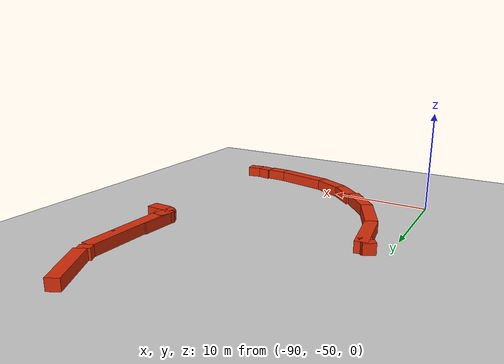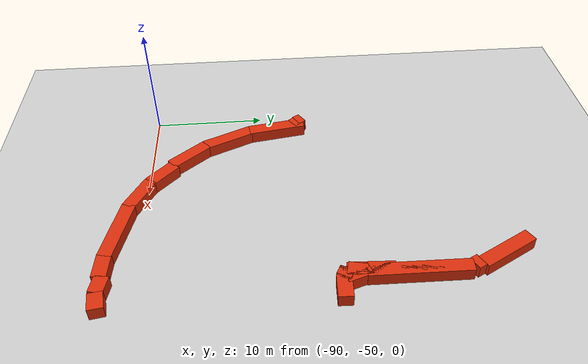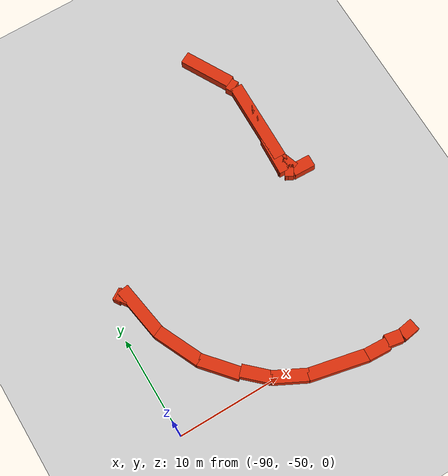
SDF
<sdf version="1.6">
 <world name="default">
  <include><uri>model://ground_plane</uri></include>
  <model name="track_inner_guardrail">
   <static>true</static>
   <link name="seg_000">
    <pose>-68.76 -33.00 0.55 0 0 -1.2416</pose>
    <collision name="col"><geometry><box><size>2.11 1.20 1.1</size></box></geometry></collision>
    <visual name="vis">
     <geometry><box><size>2.11 1.20 1.1</size></box></geometry>
     <material>
      <ambient>0.35 0.08 0.02 1</ambient>
      <diffuse>0.85 0.18 0.04 1</diffuse>
      <specular>0.2 0.2 0.2 1</specular>
     </material>
    </visual>
   </link>
   <link name="seg_248">
    <pose>-70.20 -20.92 0.55 0 0 -1.0765</pose>
    <collision name="col"><geometry><box><size>5.16 1.20 1.1</size></box></geometry></collision>
    <visual name="vis">
     <geometry><box><size>5.16 1.20 1.1</size></box></geometry>
     <material>
      <ambient>0.35 0.08 0.02 1</ambient>
      <diffuse>0.85 0.18 0.04 1</diffuse>
      <specular>0.2 0.2 0.2 1</specular>
     </material>
    </visual>
   </link>
   <link name="seg_249">
    <pose>-69.02 -23.61 0.55 0 0 -1.0765</pose>
    <collision name="col"><geometry><box><size>0.75 1.20 1.1</size></box></geometry></collision>
    <visual name="vis">
     <geometry><box><size>0.75 1.20 1.1</size></box></geometry>
     <material>
      <ambient>0.35 0.08 0.02 1</ambient>
      <diffuse>0.85 0.18 0.04 1</diffuse>
      <specular>0.2 0.2 0.2 1</specular>
     </material>
    </visual>
   </link>
   <link name="seg_250">
    <pose>-68.85 -28.13 0.55 0 0 -1.5891</pose>
    <collision name="col"><geometry><box><size>8.32 1.20 1.1</size></box></geometry></collision>
    <visual name="vis">
     <geometry><box><size>8.32 1.20 1.1</size></box></geometry>
     <material>
      <ambient>0.35 0.08 0.02 1</ambient>
      <diffuse>0.85 0.18 0.04 1</diffuse>
      <specular>0.2 0.2 0.2 1</specular>
     </material>
    </visual>
   </link>
   <link name="seg_251">
    <pose>-69.11 -32.99 0.55 0 0 -1.8026</pose>
    <collision name="col"><geometry><box><size>1.56 1.20 1.1</size></box></geometry></collision>
    <visual name="vis">
     <geometry><box><size>1.56 1.20 1.1</size></box></geometry>
     <material>
      <ambient>0.35 0.08 0.02 1</ambient>
      <diffuse>0.85 0.18 0.04 1</diffuse>
      <specular>0.2 0.2 0.2 1</specular>
     </material>
    </visual>
   </link>
   <link name="seg_252">
    <pose>-68.81 -33.95 0.55 0 0 -0.3958</pose>
    <collision name="col"><geometry><box><size>1.05 1.20 1.1</size></box></geometry></collision>
    <visual name="vis">
     <geometry><box><size>1.05 1.20 1.1</size></box></geometry>
     <material>
      <ambient>0.35 0.08 0.02 1</ambient>
      <diffuse>0.85 0.18 0.04 1</diffuse>
      <specular>0.2 0.2 0.2 1</specular>
     </material>
    </visual>
   </link>
   <link name="seg_260">
    <pose>-67.60 -34.14 0.55 0 0 3.1081</pose>
    <collision name="col"><geometry><box><size>2.11 1.20 1.1</size></box></geometry></collision>
    <visual name="vis">
     <geometry><box><size>2.11 1.20 1.1</size></box></geometry>
     <material>
      <ambient>0.35 0.08 0.02 1</ambient>
      <diffuse>0.85 0.18 0.04 1</diffuse>
      <specular>0.2 0.2 0.2 1</specular>
     </material>
    </visual>
   </link>
   <link name="seg_261">
    <pose>-68.90 -33.93 0.55 0 0 2.6156</pose>
    <collision name="col"><geometry><box><size>0.83 1.20 1.1</size></box></geometry></collision>
    <visual name="vis">
     <geometry><box><size>0.83 1.20 1.1</size></box></geometry>
     <material>
      <ambient>0.35 0.08 0.02 1</ambient>
      <diffuse>0.85 0.18 0.04 1</diffuse>
      <specular>0.2 0.2 0.2 1</specular>
     </material>
    </visual>
   </link>
   <link name="seg_262">
    <pose>-69.12 -31.89 0.55 0 0 1.5207</pose>
    <collision name="col"><geometry><box><size>3.83 1.20 1.1</size></box></geometry></collision>
    <visual name="vis">
     <geometry><box><size>3.83 1.20 1.1</size></box></geometry>
     <material>
      <ambient>0.35 0.08 0.02 1</ambient>
      <diffuse>0.85 0.18 0.04 1</diffuse>
      <specular>0.2 0.2 0.2 1</specular>
     </material>
    </visual>
   </link>
   <link name="seg_263">
    <pose>-68.85 -29.03 0.55 0 0 2.8393</pose>
    <collision name="col"><geometry><box><size>0.22 1.20 1.1</size></box></geometry></collision>
    <visual name="vis">
     <geometry><box><size>0.22 1.20 1.1</size></box></geometry>
     <material>
      <ambient>0.35 0.08 0.02 1</ambient>
      <diffuse>0.85 0.18 0.04 1</diffuse>
      <specular>0.2 0.2 0.2 1</specular>
     </material>
    </visual>
   </link>
   <link name="seg_264">
    <pose>-68.78 -28.27 0.55 0 0 2.8393</pose>
    <collision name="col"><geometry><box><size>0.22 1.20 1.1</size></box></geometry></collision>
    <visual name="vis">
     <geometry><box><size>0.22 1.20 1.1</size></box></geometry>
     <material>
      <ambient>0.35 0.08 0.02 1</ambient>
      <diffuse>0.85 0.18 0.04 1</diffuse>
      <specular>0.2 0.2 0.2 1</specular>
     </material>
    </visual>
   </link>
   <link name="seg_265">
    <pose>-68.72 -27.51 0.55 0 0 2.8393</pose>
    <collision name="col"><geometry><box><size>0.34 1.20 1.1</size></box></geometry></collision>
    <visual name="vis">
     <geometry><box><size>0.34 1.20 1.1</size></box></geometry>
     <material>
      <ambient>0.35 0.08 0.02 1</ambient>
      <diffuse>0.85 0.18 0.04 1</diffuse>
      <specular>0.2 0.2 0.2 1</specular>
     </material>
    </visual>
   </link>
   <link name="seg_266">
    <pose>-68.75 -26.97 0.55 0 0 2.8393</pose>
    <collision name="col"><geometry><box><size>0.22 1.20 1.1</size></box></geometry></collision>
    <visual name="vis">
     <geometry><box><size>0.22 1.20 1.1</size></box></geometry>
     <material>
      <ambient>0.35 0.08 0.02 1</ambient>
      <diffuse>0.85 0.18 0.04 1</diffuse>
      <specular>0.2 0.2 0.2 1</specular>
     </material>
    </visual>
   </link>
  </model>
  <model name="track_outer_guardrail">
   <static>true</static>
   <link name="seg_000">
    <pose>-69.30 -52.51 0.55 0 0 -0.1775</pose>
    <collision name="col"><geometry><box><size>1.54 1.20 1.1</size></box></geometry></collision>
    <visual name="vis">
     <geometry><box><size>1.54 1.20 1.1</size></box></geometry>
     <material>
      <ambient>0.35 0.08 0.02 1</ambient>
      <diffuse>0.85 0.18 0.04 1</diffuse>
      <specular>0.2 0.2 0.2 1</specular>
     </material>
    </visual>
   </link>
   <link name="seg_001">
    <pose>-67.77 -52.51 0.55 0 0 0.1643</pose>
    <collision name="col"><geometry><box><size>1.57 1.20 1.1</size></box></geometry></collision>
    <visual name="vis">
     <geometry><box><size>1.57 1.20 1.1</size></box></geometry>
     <material>
      <ambient>0.35 0.08 0.02 1</ambient>
      <diffuse>0.85 0.18 0.04 1</diffuse>
      <specular>0.2 0.2 0.2 1</specular>
     </material>
    </visual>
   </link>
   <link name="seg_146">
    <pose>-88.17 -36.49 0.55 0 0 -0.9488</pose>
    <collision name="col"><geometry><box><size>1.12 1.20 1.1</size></box></geometry></collision>
    <visual name="vis">
     <geometry><box><size>1.12 1.20 1.1</size></box></geometry>
     <material>
      <ambient>0.35 0.08 0.02 1</ambient>
      <diffuse>0.85 0.18 0.04 1</diffuse>
      <specular>0.2 0.2 0.2 1</specular>
     </material>
    </visual>
   </link>
   <link name="seg_147">
    <pose>-88.47 -36.24 0.55 0 0 2.1287</pose>
    <collision name="col"><geometry><box><size>0.73 1.20 1.1</size></box></geometry></collision>
    <visual name="vis">
     <geometry><box><size>0.73 1.20 1.1</size></box></geometry>
     <material>
      <ambient>0.35 0.08 0.02 1</ambient>
      <diffuse>0.85 0.18 0.04 1</diffuse>
      <specular>0.2 0.2 0.2 1</specular>
     </material>
    </visual>
   </link>
   <link name="seg_149">
    <pose>-87.51 -38.47 0.55 0 0 -1.4131</pose>
    <collision name="col"><geometry><box><size>5.25 1.20 1.1</size></box></geometry></collision>
    <visual name="vis">
     <geometry><box><size>5.25 1.20 1.1</size></box></geometry>
     <material>
      <ambient>0.35 0.08 0.02 1</ambient>
      <diffuse>0.85 0.18 0.04 1</diffuse>
      <specular>0.2 0.2 0.2 1</specular>
     </material>
    </visual>
   </link>
   <link name="seg_150">
    <pose>-86.16 -43.07 0.55 0 0 -1.1428</pose>
    <collision name="col"><geometry><box><size>4.66 1.20 1.1</size></box></geometry></collision>
    <visual name="vis">
     <geometry><box><size>4.66 1.20 1.1</size></box></geometry>
     <material>
      <ambient>0.35 0.08 0.02 1</ambient>
      <diffuse>0.85 0.18 0.04 1</diffuse>
      <specular>0.2 0.2 0.2 1</specular>
     </material>
    </visual>
   </link>
   <link name="seg_151">
    <pose>-83.97 -46.60 0.55 0 0 -0.8666</pose>
    <collision name="col"><geometry><box><size>3.97 1.20 1.1</size></box></geometry></collision>
    <visual name="vis">
     <geometry><box><size>3.97 1.20 1.1</size></box></geometry>
     <material>
      <ambient>0.35 0.08 0.02 1</ambient>
      <diffuse>0.85 0.18 0.04 1</diffuse>
      <specular>0.2 0.2 0.2 1</specular>
     </material>
    </visual>
   </link>
   <link name="seg_152">
    <pose>-81.54 -48.84 0.55 0 0 -0.7579</pose>
    <collision name="col"><geometry><box><size>2.89 1.20 1.1</size></box></geometry></collision>
    <visual name="vis">
     <geometry><box><size>2.89 1.20 1.1</size></box></geometry>
     <material>
      <ambient>0.35 0.08 0.02 1</ambient>
      <diffuse>0.85 0.18 0.04 1</diffuse>
      <specular>0.2 0.2 0.2 1</specular>
     </material>
    </visual>
   </link>
   <link name="seg_153">
    <pose>-79.07 -50.56 0.55 0 0 -0.4776</pose>
    <collision name="col"><geometry><box><size>3.42 1.20 1.1</size></box></geometry></collision>
    <visual name="vis">
     <geometry><box><size>3.42 1.20 1.1</size></box></geometry>
     <material>
      <ambient>0.35 0.08 0.02 1</ambient>
      <diffuse>0.85 0.18 0.04 1</diffuse>
      <specular>0.2 0.2 0.2 1</specular>
     </material>
    </visual>
   </link>
   <link name="seg_154">
    <pose>-74.88 -51.92 0.55 0 0 -0.2166</pose>
    <collision name="col"><geometry><box><size>5.71 1.20 1.1</size></box></geometry></collision>
    <visual name="vis">
     <geometry><box><size>5.71 1.20 1.1</size></box></geometry>
     <material>
      <ambient>0.35 0.08 0.02 1</ambient>
      <diffuse>0.85 0.18 0.04 1</diffuse>
      <specular>0.2 0.2 0.2 1</specular>
     </material>
    </visual>
   </link>
   <link name="seg_155">
    <pose>-71.11 -52.57 0.55 0 0 -0.0503</pose>
    <collision name="col"><geometry><box><size>2.20 1.20 1.1</size></box></geometry></collision>
    <visual name="vis">
     <geometry><box><size>2.20 1.20 1.1</size></box></geometry>
     <material>
      <ambient>0.35 0.08 0.02 1</ambient>
      <diffuse>0.85 0.18 0.04 1</diffuse>
      <specular>0.2 0.2 0.2 1</specular>
     </material>
    </visual>
   </link>
  </model>
 </world>
</sdf>
